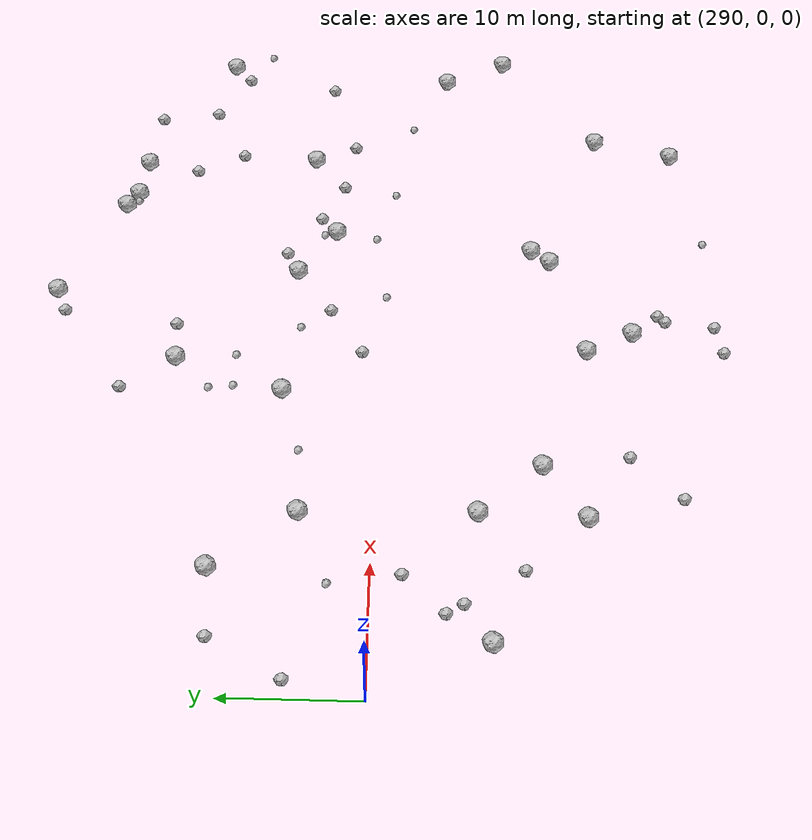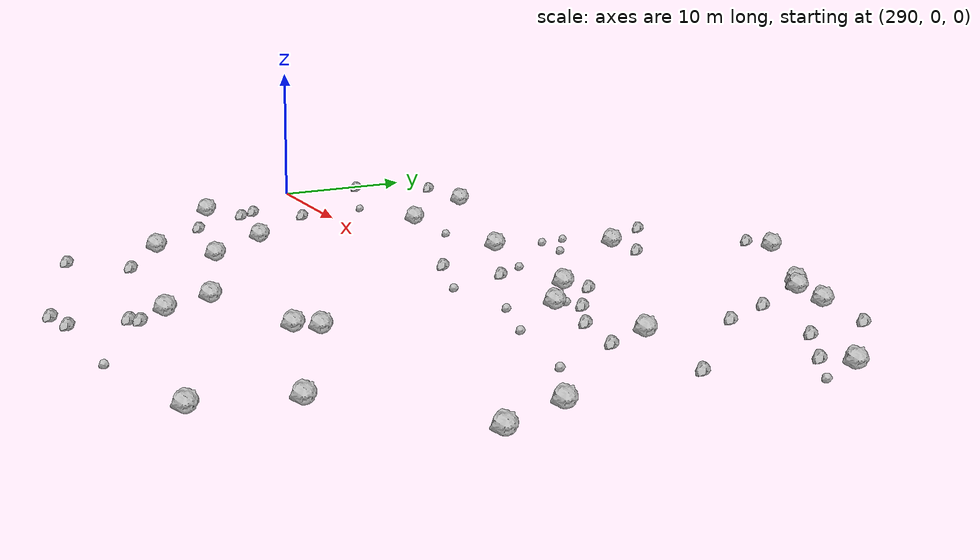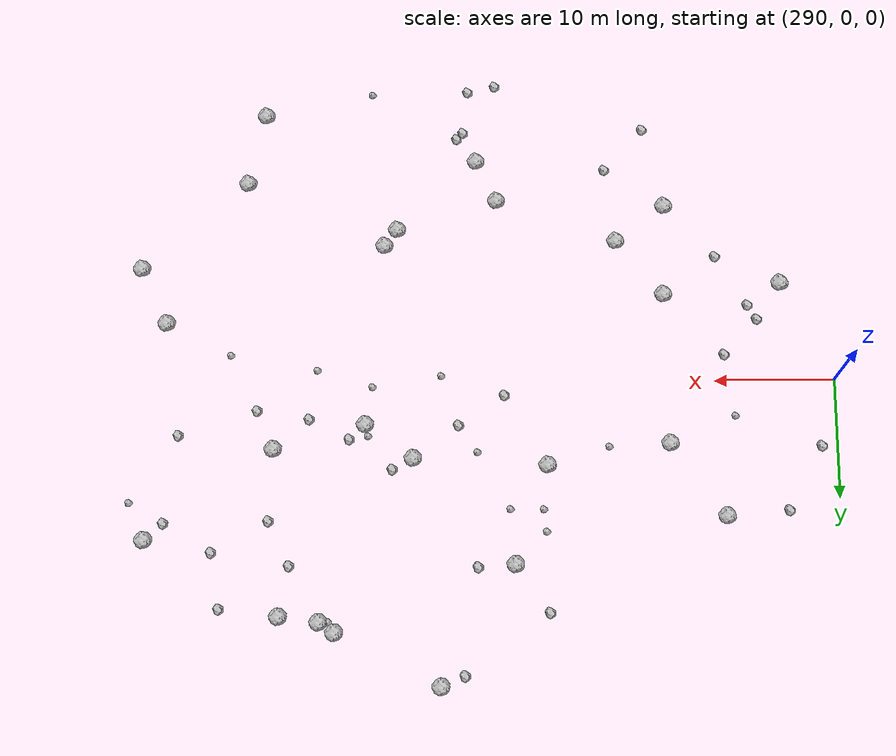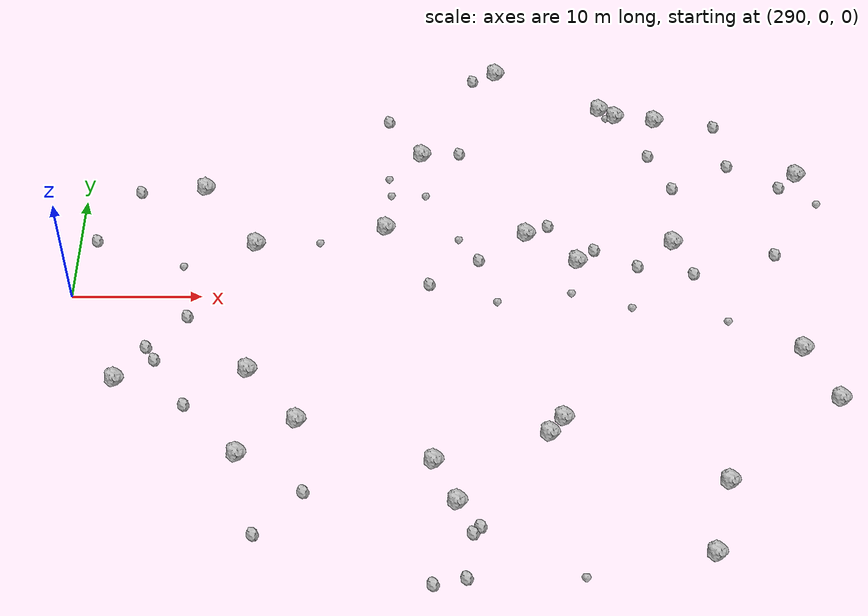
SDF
<sdf version="1.6">
 <world name="default">
  <include><uri>model://sun</uri></include>
  <model name="rock1_8_3">
   <include><uri>model://rock1</uri><pose>313.97313028246464 7.0543124086487765 0.5 0 0 0</pose></include>
  </model>
  <model name="rock1_8_4">
   <include><uri>model://rock1</uri><pose>299.3941534696554 11.383287122936089 0.5 0 0 0</pose></include>
  </model>
  <model name="rock1_8_5">
   <include><uri>model://rock1</uri><pose>304.0484028163321 -7.450990672210452 0.5 0 0 0</pose></include>
  </model>
  <model name="rock1_8_6">
   <include><uri>model://rock1</uri><pose>294.24951927727165 -8.366144312507494 0.5 0 0 0</pose></include>
  </model>
  <model name="rock1_8_7">
   <include><uri>model://rock1</uri><pose>316.6919787148541 15.242552963161707 0.5 0 0 0</pose></include>
  </model>
  <model name="rock1_8_8">
   <include><uri>model://rock1</uri><pose>307.9424189382332 -12.145596282494896 0.5 0 0 0</pose></include>
  </model>
  <model name="rock1_8_9">
   <include><uri>model://rock1</uri><pose>332.6503071942839 19.81992987398371 0.5 0 0 0</pose></include>
  </model>
  <model name="rock1_8_10">
   <include><uri>model://rock1</uri><pose>328.9799090900699 3.5565400713850295 0.5 0 0 0</pose></include>
  </model>
  <model name="rock1_8_11">
   <include><uri>model://rock1</uri><pose>319.6879721100994 -19.33741223101932 0.5 0 0 0</pose></include>
  </model>
  <model name="rock1_8_12">
   <include><uri>model://rock1</uri><pose>331.37976078666225 20.67123450109888 0.5 0 0 0</pose></include>
  </model>
  <model name="rock1_8_13">
   <include><uri>model://rock1</uri><pose>326.38144300241476 -13.275929707531624 0.5 0 0 0</pose></include>
  </model>
  <model name="rock1_8_14">
   <include><uri>model://rock1</uri><pose>337.60729595643994 -23.604036126368502 0.5 0 0 0</pose></include>
  </model>
  <model name="rock1_8_15">
   <include><uri>model://rock1</uri><pose>325.02908043517056 6.4242150630539 0.5 0 0 0</pose></include>
  </model>
  <model name="rock1_8_16">
   <include><uri>model://rock1</uri><pose>335.90078111320963 19.34579138661494 0.5 0 0 0</pose></include>
  </model>
  <model name="rock1_8_17">
   <include><uri>model://rock1</uri><pose>327.4430633900731 -11.868178448258043 0.5 0 0 0</pose></include>
  </model>
  <model name="rock1_8_18">
   <include><uri>model://rock1</uri><pose>317.9891783336434 -15.792653049030665 0.5 0 0 0</pose></include>
  </model>
  <model name="rock1_8_19">
   <include><uri>model://rock1</uri><pose>303.8396954310202 5.297021293724335 0.5 0 0 0</pose></include>
  </model>
  <model name="rock1_8_20">
   <include><uri>model://rock1</uri><pose>347.8324824118108 -9.987428558214255 0.5 0 0 0</pose></include>
  </model>
  <model name="rock1_8_21">
   <include><uri>model://rock1</uri><pose>303.79908617660334 -15.232234654583385 0.5 0 0 0</pose></include>
  </model>
  <model name="rock1_8_22">
   <include><uri>model://rock1</uri><pose>322.7707348738285 25.024896079524837 0.5 0 0 0</pose></include>
  </model>
  <model name="rock1_8_23">
   <include><uri>model://rock1</uri><pose>336.5366685173814 5.5759420536172755 0.5 0 0 0</pose></include>
  </model>
  <model name="rock1_8_24">
   <include><uri>model://rock1</uri><pose>346.96442332866286 13.048341067531098 0.5 0 0 0</pose></include>
  </model>
  <model name="rock1_8_25">
   <include><uri>model://rock1</uri><pose>345.6147918572587 -5.215567167205307 0.5 0 0 0</pose></include>
  </model>
  <model name="rock1_8_26">
   <include><uri>model://rock1</uri><pose>339.0462320300553 -17.48941576056926 0.5 0 0 0</pose></include>
  </model>
  <model name="rock2_8_0">
   <include><uri>model://rock2</uri><pose>335.0924591114744 15.261749394388119 0.3 0 0 0</pose></include>
  </model>
  <model name="rock2_8_1">
   <include><uri>model://rock2</uri><pose>344.3751384951239 4.3840388456466215 0.3 0 0 0</pose></include>
  </model>
  <model name="rock2_8_2">
   <include><uri>model://rock2</uri><pose>318.0303172637559 -26.21118258672181 0.3 0 0 0</pose></include>
  </model>
  <model name="rock2_8_3">
   <include><uri>model://rock2</uri><pose>320.82212869343687 24.213592190950315 0.3 0 0 0</pose></include>
  </model>
  <model name="rock2_8_4">
   <include><uri>model://rock2</uri><pose>319.7128266313515 15.466993011723162 0.3 0 0 0</pose></include>
  </model>
  <model name="rock2_8_5">
   <include><uri>model://rock2</uri><pose>313.928606929534 19.20351383081905 0.3 0 0 0</pose></include>
  </model>
  <model name="rock2_8_6">
   <include><uri>model://rock2</uri><pose>326.72738543011457 7.356074062882968 0.3 0 0 0</pose></include>
  </model>
  <model name="rock2_8_7">
   <include><uri>model://rock2</uri><pose>345.4156542204509 11.686258665371028 0.3 0 0 0</pose></include>
  </model>
  <model name="rock2_8_8">
   <include><uri>model://rock2</uri><pose>305.4367119494522 -22.14941610100401 0.3 0 0 0</pose></include>
  </model>
  <model name="rock2_8_9">
   <include><uri>model://rock2</uri><pose>296.2672249832473 -5.2244220793428084 0.3 0 0 0</pose></include>
  </model>
  <model name="rock2_8_10">
   <include><uri>model://rock2</uri><pose>341.4481244761625 14.121523922741574 0.3 0 0 0</pose></include>
  </model>
  <model name="rock2_8_11">
   <include><uri>model://rock2</uri><pose>321.26809650033834 3.6882032913656246 0.3 0 0 0</pose></include>
  </model>
  <model name="rock2_8_12">
   <include><uri>model://rock2</uri><pose>333.6052816964564 3.0908581289353876 0.3 0 0 0</pose></include>
  </model>
  <model name="rock2_8_13">
   <include><uri>model://rock2</uri><pose>340.7216263683224 18.71674687221588 0.3 0 0 0</pose></include>
  </model>
  <model name="rock2_8_14">
   <include><uri>model://rock2</uri><pose>294.2400906415817 10.983497279305162 0.3 0 0 0</pose></include>
  </model>
  <model name="rock2_8_15">
   <include><uri>model://rock2</uri><pose>321.3098399317527 -21.4112952768913 0.3 0 0 0</pose></include>
  </model>
  <model name="rock2_8_16">
   <include><uri>model://rock2</uri><pose>297.00736089202525 -6.4579034585513995 0.3 0 0 0</pose></include>
  </model>
  <model name="rock2_8_17">
   <include><uri>model://rock2</uri><pose>337.9098222709565 2.3468408609144475 0.3 0 0 0</pose></include>
  </model>
  <model name="rock2_8_18">
   <include><uri>model://rock2</uri><pose>320.77776358841504 -21.97676300101058 0.3 0 0 0</pose></include>
  </model>
  <model name="rock2_8_19">
   <include><uri>model://rock2</uri><pose>291.32935686870144 5.634039574752535 0.3 0 0 0</pose></include>
  </model>
  <model name="rock2_8_20">
   <include><uri>model://rock2</uri><pose>320.3437035890081 -25.69550457762742 0.3 0 0 0</pose></include>
  </model>
  <model name="rock2_8_21">
   <include><uri>model://rock2</uri><pose>330.2875325277611 4.800942364983769 0.3 0 0 0</pose></include>
  </model>
  <model name="rock2_8_22">
   <include><uri>model://rock2</uri><pose>336.8366369319432 11.574111613360053 0.3 0 0 0</pose></include>
  </model>
  <model name="rock2_8_23">
   <include><uri>model://rock2</uri><pose>317.45663167696966 1.167371846745521 0.3 0 0 0</pose></include>
  </model>
  <model name="rock2_8_24">
   <include><uri>model://rock2</uri><pose>308.75484303640326 -18.50614647584939 0.3 0 0 0</pose></include>
  </model>
  <model name="rock2_8_25">
   <include><uri>model://rock2</uri><pose>299.10616850876585 -2.1810957661264077 0.3 0 0 0</pose></include>
  </model>
  <model name="rock2_8_26">
   <include><uri>model://rock2</uri><pose>299.5880711788857 -10.723252223597651 0.3 0 0 0</pose></include>
  </model>
  <model name="rock3_8_0">
   <include><uri>model://rock3</uri><pose>328.7098368090196 4.4842658441387115 0.2 0 0 0</pose></include>
  </model>
  <model name="rock3_8_1">
   <include><uri>model://rock3</uri><pose>340.1778702508188 -2.468482217892113 0.2 0 0 0</pose></include>
  </model>
  <model name="rock3_8_2">
   <include><uri>model://rock3</uri><pose>314.07924202116635 12.549092536401972 0.2 0 0 0</pose></include>
  </model>
  <model name="rock3_8_3">
   <include><uri>model://rock3</uri><pose>328.37456034835355 0.33169450206818496 0.2 0 0 0</pose></include>
  </model>
  <model name="rock3_8_4">
   <include><uri>model://rock3</uri><pose>317.0376296556757 10.666008155016307 0.2 0 0 0</pose></include>
  </model>
  <model name="rock3_8_5">
   <include><uri>model://rock3</uri><pose>322.6654853266573 -0.5835022936738632 0.2 0 0 0</pose></include>
  </model>
  <model name="rock3_8_6">
   <include><uri>model://rock3</uri><pose>331.8665073717419 19.755692830521184 0.2 0 0 0</pose></include>
  </model>
  <model name="rock3_8_7">
   <include><uri>model://rock3</uri><pose>332.94925008904215 -1.119562035154452 0.2 0 0 0</pose></include>
  </model>
  <model name="rock3_8_8">
   <include><uri>model://rock3</uri><pose>319.69507266850184 5.905848906681015 0.2 0 0 0</pose></include>
  </model>
  <model name="rock3_8_9">
   <include><uri>model://rock3</uri><pose>314.2927541691438 10.704314929355931 0.2 0 0 0</pose></include>
  </model>
  <model name="rock3_8_10">
   <include><uri>model://rock3</uri><pose>328.5048714666732 -25.59279312079356 0.2 0 0 0</pose></include>
  </model>
  <model name="rock3_8_11">
   <include><uri>model://rock3</uri><pose>308.8253484538281 5.51355963916447 0.2 0 0 0</pose></include>
  </model>
  <model name="rock3_8_12">
   <include><uri>model://rock3</uri><pose>348.2596068671361 9.914346771480453 0.2 0 0 0</pose></include>
  </model>
  <model name="rock3_8_13">
   <include><uri>model://rock3</uri><pose>298.3313776821082 2.9829998919249476 0.2 0 0 0</pose></include>
  </model>
 </world>
</sdf>
